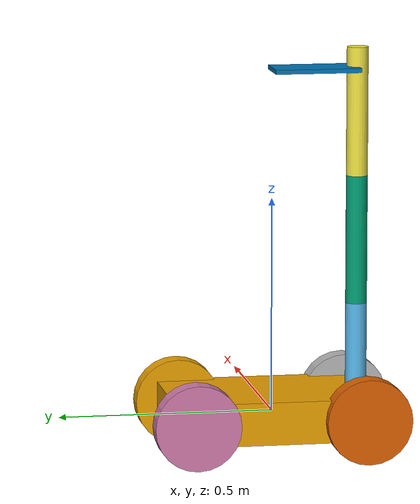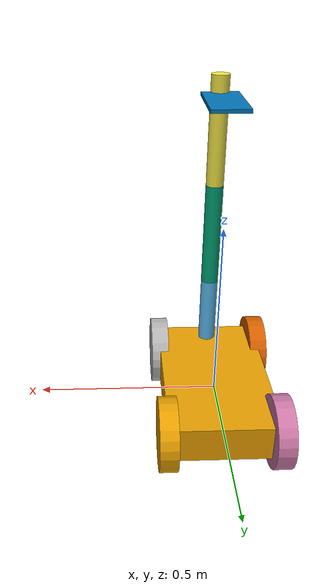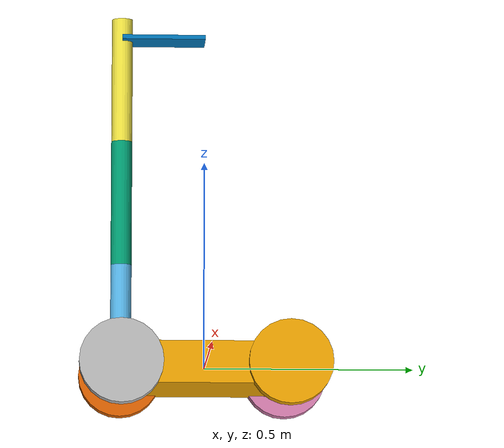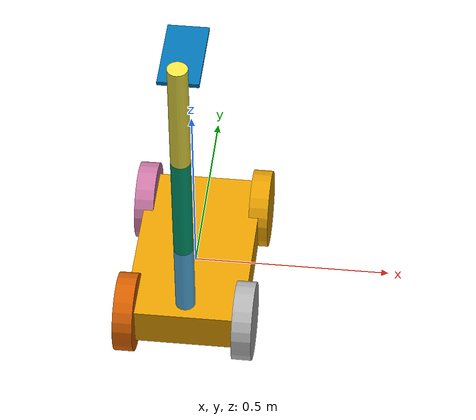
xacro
<?xml version='1.0'?>

<robot name="robot" xmlns:xacro="http://www.ros.org/wiki/xacro">

  <link name="body">

  <inertial>
      <mass value="4" />
      <origin xyz="0 0 0"/>
      <inertia ixx="0.001" ixy="0.0" ixz="0.0"
        iyy="0.001" iyz="0.0"
        izz="0.001" />
    </inertial>

    <visual>
     <origin xyz="0 0 0" rpy=" 0 0 0"/>
      <geometry>
       <box size="0.3 0.5 0.1"/>
      </geometry>
   </visual>
   <collision name="collision">
       <geometry>
          <box size="0.3 0.5 0.1"/>
       </geometry>
     </collision>
  </link>

  <joint name="joint1" type="revolute">
    <parent link="body"/>
    <child link="armL1"/>
    <origin xyz="0 -0.2 0.1" rpy="0 0 0" />
    <geometry>
       <sphere radius="0.05"/>
     </geometry>
    <axis xyz="0 0 0" rpy="0 0 0"/>
    <limit effort="1000.0" lower="-3.14" upper="3.14" velocity="1"/>
    <joint_properties damping="1.0"/>
  </joint>

  <link name="armL1">
  <visual>
  <origin rpy="0 0 0" xyz ="0 0 0" />
    <geometry>
      <cylinder length="0.3" radius="0.025" />
    </geometry>
  </visual>
  <collision name="collision">
      <geometry>
         <cylinder length="0.3" radius="0.025" />
      </geometry>
    </collision>
  <inertial>
      <mass value="1" />
      <origin xyz="0 0 0"/>
      <inertia ixx="0.001" ixy="0.0" ixz="0.0"
        iyy="0.001" iyz="0.0"
        izz="0.001" />
    </inertial>
  </link>

  <joint name="joint2" type="revolute">
    <parent link="armL1"/>
    <child link="armL2"/>
    <origin xyz="0 0 0.3" rpy="0 0 0" />
   <geometry>
      <sphere radius="0.025"/>
    </geometry>
    <axis xyz="0 0 0" />
    <limit effort="1000.0" lower="-3.14" upper="3.14" velocity="1"/>
    <joint_properties damping="1.0"/>
  </joint>

  <link name="armL2">
  <visual>
  <origin rpy="0 0 0" xyz ="0 0 0" />
    <geometry>
      <cylinder length="0.3" radius="0.025" />
    </geometry>
  </visual>
  <collision name="collision">
      <geometry>
         <cylinder length="0.3" radius="0.025" />
      </geometry>
    </collision>
  <inertial>
      <mass value="1" />
      <origin xyz="0 0 0"/>
      <inertia ixx="0.001" ixy="0.0" ixz="0.0"
        iyy="0.001" iyz="0.0"
        izz="0.001" />
    </inertial>
  </link>

  <joint name="joint3" type="revolute">
    <parent link="armL2"/>
    <child link="armL3"/>
    <origin xyz="0 0 0.3" rpy="0 0 0" />
    <geometry>
       <sphere radius="0.025"/>
     </geometry>
    <axis xyz="0 0 0" />
    <limit effort="1000.0" lower="-3.14" upper="3.14" velocity="1"/>
    <joint_properties damping="1.0"/>
  </joint>

  <link name="armL3">
  <visual>
  <origin rpy="0 0 0" xyz ="0 0 0" />
    <geometry>
      <cylinder length="0.3" radius="0.025" />
    </geometry>
  </visual>
  <collision name="collision">
      <geometry>
         <cylinder length="0.3" radius="0.025" />
      </geometry>
    </collision>
  <collision>
      <geometry>
        <cylinder length="0.3" radius="0.025" />
      </geometry>
    </collision>
  <inertial>
      <mass value="1" />
      <origin xyz="0 0 0"/>
      <inertia ixx="0.001" ixy="0.0" ixz="0.0"
        iyy="0.001" iyz="0.0"
        izz="0.001" />
    </inertial>
  </link>

  <joint name="joint4" type="revolute">
    <parent link="armL3"/>
    <child link="fork"/>
    <origin xyz="0 0 0.1" rpy="0 0 0" />
    <geometry>
       <sphere radius="0.025"/>
     </geometry>
    <axis xyz="0 0 0" />
    <limit effort="1000.0" lower="-3.14" upper="3.14" velocity="1"/>
    <joint_properties damping="1.0"/>
  </joint>

  <link name="fork">
  <visual>
  <origin rpy="0 0 0" xyz ="0 0.1 0" />
    <geometry>
      <box size="0.1 0.2 0.01" />
    </geometry>
  </visual>
    <collision name="collision">
      <geometry>
           <box size="0.01 0.4 0.01" />
      </geometry>
    </collision>
  <inertial>
      <mass value="1" />
      <origin xyz="-0. 0 0"/>
      <inertia ixx="0.001" ixy="0.0" ixz="0.0"
        iyy="0.001" iyz="0.0"
        izz="0.001" />
    </inertial>
  </link>

  <link name="left_backwheel">

    <collision name="collision">
      <origin xyz="0 0 0" rpy="0 1.5707 1.5707"/>
      <geometry>
        <cylinder radius="0.1" length="0.05"/>
      </geometry>
    </collision>
    <visual name="left_wheel_visual">
      <origin xyz="0 0 0" rpy="0 1.5707 1.5707"/>
      <geometry>
        <cylinder radius="0.1" length="0.05"/>
      </geometry>
    </visual>
    <inertial>
      <origin xyz="0 0 0" rpy="0 1.5707 1.5707"/>
      <mass value="5"/>
      <inertia
        ixx=".1" ixy="0.0" ixz="0.0"
        iyy=".1" iyz="0.0"
        izz=".1"/>
    </inertial>
  </link>

  <link name="left_frontwheel">

    <collision name="collision">
      <origin xyz="0 0 0" rpy="0 1.5707 1.5707"/>
      <geometry>
        <cylinder radius="0.1" length="0.05"/>
      </geometry>
    </collision>
    <visual name="left_wheel_visual">
      <origin xyz="0 0 0" rpy="0 1.5707 1.5707"/>
      <geometry>
        <cylinder radius="0.1" length="0.05"/>
      </geometry>
    </visual>
    <inertial>
      <origin xyz="0 0 0" rpy="0 1.5707 1.5707"/>
      <mass value="5"/>
      <inertia
        ixx=".1" ixy="0.0" ixz="0.0"
        iyy=".1" iyz="0.0"
        izz=".1"/>
    </inertial>
  </link>

  <link name="right_backwheel">

    <collision name="collision">
      <origin xyz="0 0 0" rpy="0 1.5707 1.5707"/>
      <geometry>
        <cylinder radius="0.1" length="0.05"/>
      </geometry>
    </collision>
    <visual name="right_wheel_visual">
      <origin xyz="0 0 0" rpy="0 1.5707 1.5707"/>
      <geometry>
        <cylinder radius="0.1" length="0.05"/>
      </geometry>
    </visual>
    <inertial>
      <origin xyz="0 0 0" rpy="0 1.5707 1.5707"/>
      <mass value="5"/>
      <inertia
        ixx=".1" ixy="0.0" ixz="0.0"
        iyy=".1" iyz="0.0"
        izz=".1"/>
    </inertial>
  </link>

  <link name="right_frontwheel">

    <collision name="collision">
      <origin xyz="0 0 0" rpy="0 1.5707 1.5707"/>
      <geometry>
        <cylinder radius="0.1" length="0.05"/>
      </geometry>
    </collision>
    <visual name="right_wheel_visual">
      <origin xyz="0 0 0" rpy="0 1.5707 1.5707"/>
      <geometry>
        <cylinder radius="0.1" length="0.05"/>
      </geometry>
    </visual>
    <inertial>
      <origin xyz="0 0 0" rpy="0 1.5707 1.5707"/>
      <mass value="5"/>
      <inertia
        ixx=".1" ixy="0.0" ixz="0.0"
        iyy=".1" iyz="0.0"
        izz=".1"/>
    </inertial>
  </link>

  <joint type="continuous" name="left_frontwheel_hinge">
    <origin xyz="-0.15 0.2 0" rpy="0 0 1.5707"/>

    <child link="left_frontwheel"/>
    <parent link="body"/>
    <axis xyz="0 1 0" rpy="0 0 0"/>
    <limit effort="10000" velocity="1000"/>
    <joint_properties damping="1.0" friction="1.0"/>
  </joint>

  <joint type="continuous" name="left_backwheel_hinge">
    <origin xyz="-0.15 -0.2 0" rpy="0 0 1.5707"/>

    <child link="left_backwheel"/>
    <parent link="body"/>
    <axis xyz="0 1 0" rpy="0 0 0"/>
    <limit effort="10000" velocity="1000"/>
    <joint_properties damping="1.0" friction="1.0"/>
  </joint>

  <joint type="continuous" name="right_frontwheel_hinge">
    <origin xyz="0.15 0.2 0" rpy="0 0 1.5707"/>

    <child link="right_frontwheel"/>
    <parent link="body"/>
    <axis xyz="1 0 0" rpy="0 0 0"/>
    <limit effort="10000" velocity="1000"/>
    <joint_properties damping="1.0" friction="1.0"/>
  </joint>

  <joint type="continuous" name="right_backwheel_hinge">
    <origin xyz="0.15 -0.2 0" rpy="0 0 1.5707"/>

    <child link="right_backwheel"/>
    <parent link="body"/>
    <axis xyz="1 0 0" rpy="0 0 0"/>
    <limit effort="10000" velocity="1000"/>
    <joint_properties damping="1.0" friction="1.0"/>
  </joint>

</robot>
